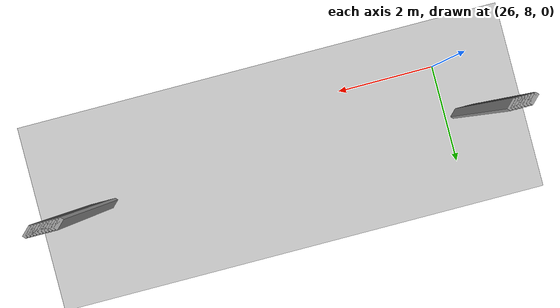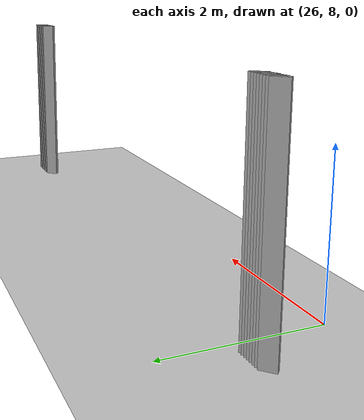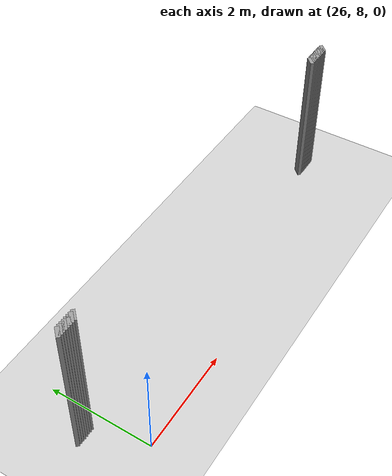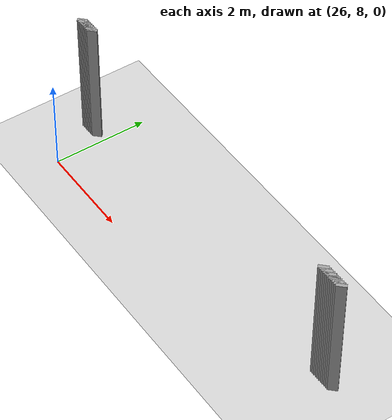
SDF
<sdf version="1.5">
 <world name="default">
  <include><uri>model://ground_plane</uri></include>
  <include><uri>model://sun</uri></include>
  <model name="grey_wall_3505">
   <static>1</static>
   <link name="link">
    <pose>25.45 9.05  1.4 0 0 -0.785398163397</pose>
    <collision name="collision"><geometry><box><size>0.0707106781187 .2  2.8</size></box></geometry></collision>
    <visual name="visual">
     <cast_shadows>0</cast_shadows>
     <geometry><box><size>0.0707106781187 .2  2.8</size></box></geometry>
     <material>
      <script>
       <uri>model://grey_wall/materials/scripts</uri>
       <uri>model://grey_wall/materials/textures</uri>
       <name>vrc/grey_wall</name>
      </script>
     </material>
    </visual>
   </link>
  </model>
  <model name="grey_wall_3506">
   <static>1</static>
   <link name="link">
    <pose>25.5 9.05  1.4 0 0 -0.785398163397</pose>
    <collision name="collision"><geometry><box><size>0.0707106781187 .2  2.8</size></box></geometry></collision>
    <visual name="visual">
     <cast_shadows>0</cast_shadows>
     <geometry><box><size>0.0707106781187 .2  2.8</size></box></geometry>
     <material>
      <script>
       <uri>model://grey_wall/materials/scripts</uri>
       <uri>model://grey_wall/materials/textures</uri>
       <name>vrc/grey_wall</name>
      </script>
     </material>
    </visual>
   </link>
  </model>
  <model name="grey_wall_3507">
   <static>1</static>
   <link name="link">
    <pose>25.55 9.05  1.4 0 0 -0.785398163397</pose>
    <collision name="collision"><geometry><box><size>0.0707106781187 .2  2.8</size></box></geometry></collision>
    <visual name="visual">
     <cast_shadows>0</cast_shadows>
     <geometry><box><size>0.0707106781187 .2  2.8</size></box></geometry>
     <material>
      <script>
       <uri>model://grey_wall/materials/scripts</uri>
       <uri>model://grey_wall/materials/textures</uri>
       <name>vrc/grey_wall</name>
      </script>
     </material>
    </visual>
   </link>
  </model>
  <model name="grey_wall_3508">
   <static>1</static>
   <link name="link">
    <pose>25.6 9.05  1.4 0 0 -0.785398163397</pose>
    <collision name="collision"><geometry><box><size>0.0707106781187 .2  2.8</size></box></geometry></collision>
    <visual name="visual">
     <cast_shadows>0</cast_shadows>
     <geometry><box><size>0.0707106781187 .2  2.8</size></box></geometry>
     <material>
      <script>
       <uri>model://grey_wall/materials/scripts</uri>
       <uri>model://grey_wall/materials/textures</uri>
       <name>vrc/grey_wall</name>
      </script>
     </material>
    </visual>
   </link>
  </model>
  <model name="grey_wall_3509">
   <static>1</static>
   <link name="link">
    <pose>25.65 9.05  1.4 0 0 -0.785398163397</pose>
    <collision name="collision"><geometry><box><size>0.0707106781187 .2  2.8</size></box></geometry></collision>
    <visual name="visual">
     <cast_shadows>0</cast_shadows>
     <geometry><box><size>0.0707106781187 .2  2.8</size></box></geometry>
     <material>
      <script>
       <uri>model://grey_wall/materials/scripts</uri>
       <uri>model://grey_wall/materials/textures</uri>
       <name>vrc/grey_wall</name>
      </script>
     </material>
    </visual>
   </link>
  </model>
  <model name="grey_wall_3510">
   <static>1</static>
   <link name="link">
    <pose>25.7 9.05  1.4 0 0 -0.785398163397</pose>
    <collision name="collision"><geometry><box><size>0.0707106781187 .2  2.8</size></box></geometry></collision>
    <visual name="visual">
     <cast_shadows>0</cast_shadows>
     <geometry><box><size>0.0707106781187 .2  2.8</size></box></geometry>
     <material>
      <script>
       <uri>model://grey_wall/materials/scripts</uri>
       <uri>model://grey_wall/materials/textures</uri>
       <name>vrc/grey_wall</name>
      </script>
     </material>
    </visual>
   </link>
  </model>
  <model name="grey_wall_3511">
   <static>1</static>
   <link name="link">
    <pose>25.75 9.05  1.4 0 0 -0.785398163397</pose>
    <collision name="collision"><geometry><box><size>0.0707106781187 .2  2.8</size></box></geometry></collision>
    <visual name="visual">
     <cast_shadows>0</cast_shadows>
     <geometry><box><size>0.0707106781187 .2  2.8</size></box></geometry>
     <material>
      <script>
       <uri>model://grey_wall/materials/scripts</uri>
       <uri>model://grey_wall/materials/textures</uri>
       <name>vrc/grey_wall</name>
      </script>
     </material>
    </visual>
   </link>
  </model>
  <model name="grey_wall_3512">
   <static>1</static>
   <link name="link">
    <pose>25.8 9.05  1.4 0 0 -0.785398163397</pose>
    <collision name="collision"><geometry><box><size>0.0707106781187 .2  2.8</size></box></geometry></collision>
    <visual name="visual">
     <cast_shadows>0</cast_shadows>
     <geometry><box><size>0.0707106781187 .2  2.8</size></box></geometry>
     <material>
      <script>
       <uri>model://grey_wall/materials/scripts</uri>
       <uri>model://grey_wall/materials/textures</uri>
       <name>vrc/grey_wall</name>
      </script>
     </material>
    </visual>
   </link>
  </model>
  <model name="grey_wall_3513">
   <static>1</static>
   <link name="link">
    <pose>33.1 9.05  1.4 0 0 -0.785398163397</pose>
    <collision name="collision"><geometry><box><size>0.0707106781187 .2  2.8</size></box></geometry></collision>
    <visual name="visual">
     <cast_shadows>0</cast_shadows>
     <geometry><box><size>0.0707106781187 .2  2.8</size></box></geometry>
     <material>
      <script>
       <uri>model://grey_wall/materials/scripts</uri>
       <uri>model://grey_wall/materials/textures</uri>
       <name>vrc/grey_wall</name>
      </script>
     </material>
    </visual>
   </link>
  </model>
  <model name="grey_wall_3514">
   <static>1</static>
   <link name="link">
    <pose>33.15 9.05  1.4 0 0 -0.785398163397</pose>
    <collision name="collision"><geometry><box><size>0.0707106781187 .2  2.8</size></box></geometry></collision>
    <visual name="visual">
     <cast_shadows>0</cast_shadows>
     <geometry><box><size>0.0707106781187 .2  2.8</size></box></geometry>
     <material>
      <script>
       <uri>model://grey_wall/materials/scripts</uri>
       <uri>model://grey_wall/materials/textures</uri>
       <name>vrc/grey_wall</name>
      </script>
     </material>
    </visual>
   </link>
  </model>
  <model name="grey_wall_3515">
   <static>1</static>
   <link name="link">
    <pose>33.2 9.05  1.4 0 0 -0.785398163397</pose>
    <collision name="collision"><geometry><box><size>0.0707106781187 .2  2.8</size></box></geometry></collision>
    <visual name="visual">
     <cast_shadows>0</cast_shadows>
     <geometry><box><size>0.0707106781187 .2  2.8</size></box></geometry>
     <material>
      <script>
       <uri>model://grey_wall/materials/scripts</uri>
       <uri>model://grey_wall/materials/textures</uri>
       <name>vrc/grey_wall</name>
      </script>
     </material>
    </visual>
   </link>
  </model>
  <model name="grey_wall_3516">
   <static>1</static>
   <link name="link">
    <pose>33.25 9.05  1.4 0 0 -0.785398163397</pose>
    <collision name="collision"><geometry><box><size>0.0707106781187 .2  2.8</size></box></geometry></collision>
    <visual name="visual">
     <cast_shadows>0</cast_shadows>
     <geometry><box><size>0.0707106781187 .2  2.8</size></box></geometry>
     <material>
      <script>
       <uri>model://grey_wall/materials/scripts</uri>
       <uri>model://grey_wall/materials/textures</uri>
       <name>vrc/grey_wall</name>
      </script>
     </material>
    </visual>
   </link>
  </model>
  <model name="grey_wall_3517">
   <static>1</static>
   <link name="link">
    <pose>33.3 9.05  1.4 0 0 -0.785398163397</pose>
    <collision name="collision"><geometry><box><size>0.0707106781187 .2  2.8</size></box></geometry></collision>
    <visual name="visual">
     <cast_shadows>0</cast_shadows>
     <geometry><box><size>0.0707106781187 .2  2.8</size></box></geometry>
     <material>
      <script>
       <uri>model://grey_wall/materials/scripts</uri>
       <uri>model://grey_wall/materials/textures</uri>
       <name>vrc/grey_wall</name>
      </script>
     </material>
    </visual>
   </link>
  </model>
  <model name="grey_wall_3518">
   <static>1</static>
   <link name="link">
    <pose>33.35 9.05  1.4 0 0 -0.785398163397</pose>
    <collision name="collision"><geometry><box><size>0.0707106781187 .2  2.8</size></box></geometry></collision>
    <visual name="visual">
     <cast_shadows>0</cast_shadows>
     <geometry><box><size>0.0707106781187 .2  2.8</size></box></geometry>
     <material>
      <script>
       <uri>model://grey_wall/materials/scripts</uri>
       <uri>model://grey_wall/materials/textures</uri>
       <name>vrc/grey_wall</name>
      </script>
     </material>
    </visual>
   </link>
  </model>
  <model name="grey_wall_3519">
   <static>1</static>
   <link name="link">
    <pose>33.4 9.05  1.4 0 0 -0.785398163397</pose>
    <collision name="collision"><geometry><box><size>0.0707106781187 .2  2.8</size></box></geometry></collision>
    <visual name="visual">
     <cast_shadows>0</cast_shadows>
     <geometry><box><size>0.0707106781187 .2  2.8</size></box></geometry>
     <material>
      <script>
       <uri>model://grey_wall/materials/scripts</uri>
       <uri>model://grey_wall/materials/textures</uri>
       <name>vrc/grey_wall</name>
      </script>
     </material>
    </visual>
   </link>
  </model>
  <model name="grey_wall_3520">
   <static>1</static>
   <link name="link">
    <pose>33.45 9.05  1.4 0 0 -0.785398163397</pose>
    <collision name="collision"><geometry><box><size>0.0707106781187 .2  2.8</size></box></geometry></collision>
    <visual name="visual">
     <cast_shadows>0</cast_shadows>
     <geometry><box><size>0.0707106781187 .2  2.8</size></box></geometry>
     <material>
      <script>
       <uri>model://grey_wall/materials/scripts</uri>
       <uri>model://grey_wall/materials/textures</uri>
       <name>vrc/grey_wall</name>
      </script>
     </material>
    </visual>
   </link>
  </model>
  <model name="grey_wall_3521">
   <static>1</static>
   <link name="link">
    <pose>33.5 9.05  1.4 0 0 -0.785398163397</pose>
    <collision name="collision"><geometry><box><size>0.0707106781187 .2  2.8</size></box></geometry></collision>
    <visual name="visual">
     <cast_shadows>0</cast_shadows>
     <geometry><box><size>0.0707106781187 .2  2.8</size></box></geometry>
     <material>
      <script>
       <uri>model://grey_wall/materials/scripts</uri>
       <uri>model://grey_wall/materials/textures</uri>
       <name>vrc/grey_wall</name>
      </script>
     </material>
    </visual>
   </link>
  </model>
  <model name="grey_wall_3522">
   <static>1</static>
   <link name="link">
    <pose>33.55 9.05  1.4 0 0 -0.785398163397</pose>
    <collision name="collision"><geometry><box><size>0.0707106781187 .2  2.8</size></box></geometry></collision>
    <visual name="visual">
     <cast_shadows>0</cast_shadows>
     <geometry><box><size>0.0707106781187 .2  2.8</size></box></geometry>
     <material>
      <script>
       <uri>model://grey_wall/materials/scripts</uri>
       <uri>model://grey_wall/materials/textures</uri>
       <name>vrc/grey_wall</name>
      </script>
     </material>
    </visual>
   </link>
  </model>
  <model name="grey_wall_3523">
   <static>1</static>
   <link name="link">
    <pose>33.6 9.05  1.4 0 0 -0.785398163397</pose>
    <collision name="collision"><geometry><box><size>0.0707106781187 .2  2.8</size></box></geometry></collision>
    <visual name="visual">
     <cast_shadows>0</cast_shadows>
     <geometry><box><size>0.0707106781187 .2  2.8</size></box></geometry>
     <material>
      <script>
       <uri>model://grey_wall/materials/scripts</uri>
       <uri>model://grey_wall/materials/textures</uri>
       <name>vrc/grey_wall</name>
      </script>
     </material>
    </visual>
   </link>
  </model>
 </world>
</sdf>
